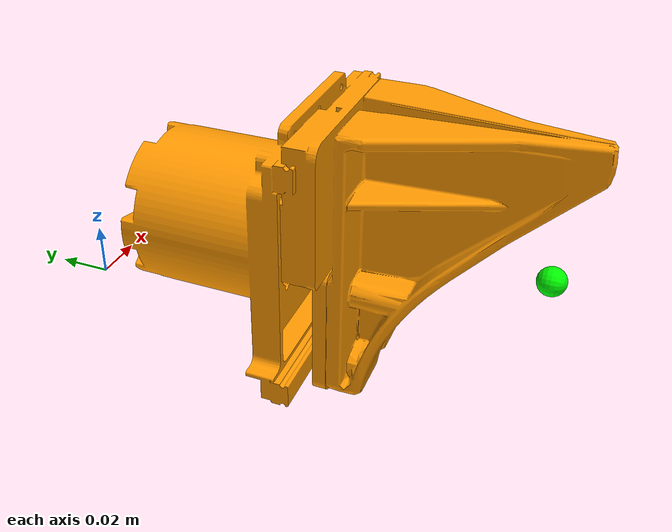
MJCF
<mujoco model="crank_4310">
  <compiler angle="radian" meshdir="assets"/>

  <asset>
    <mesh name="gripper_collision" file="gripper_collision.stl"/>
  </asset>

  <worldbody>
    <body name="gripper" pos="0.0 -0.0398 0.0412" quat="-9.381869e-07 -4.890237e-06 -0.7071064 0.7071072">
      <inertial pos="-5.10177e-05 -0.00269952 0.0581778" quat="0.98383 0.174699 0.0 0.0" mass="0.55366" diaginertia="0.000956992 0.000799286 0.000469547"/>
      <joint name="joint6" pos="0 0 0" axis="0 0 1" range="-2.0944 2.0944" actuatorfrcrange="-10 10"/>
      <geom pos="-5.10177e-05 -0.00269952 0.0481778" quat="1 -1 -1 -1" type="mesh" rgba="1 0.6 0 1" mesh="gripper_collision"/>
      <site name="tcp_site" pos="0 0 0" quat="1 0 0 -1" size="0.005" rgba="1 0 0 1"/>
      <site name="grasp_site" pos="0 0 0.1347" quat="1 0 0 -1" size="0.005" rgba="0 1 0 1"/>
    </body>
  </worldbody>
</mujoco>
